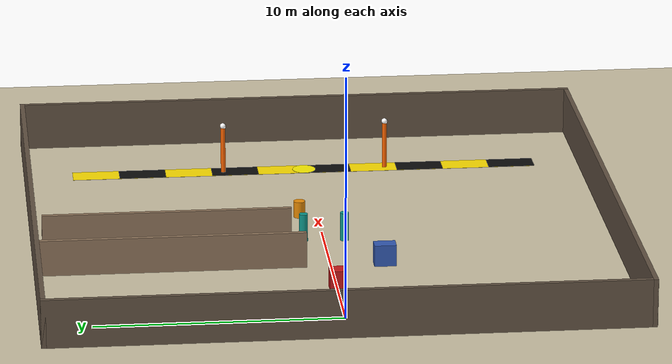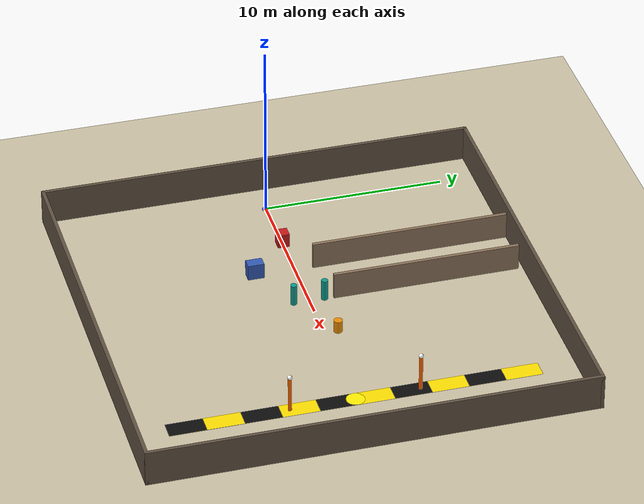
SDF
<?xml version="1.0" ?>
<sdf version="1.8">
  <world name="warehouse">

    <physics name="1ms" type="ignored">
      <max_step_size>0.001</max_step_size>
      <real_time_factor>1.0</real_time_factor>
    </physics>

    <plugin filename="gz-sim-physics-system"           name="gz::sim::systems::Physics"/>
    <plugin filename="gz-sim-user-commands-system"     name="gz::sim::systems::UserCommands"/>
    <plugin filename="gz-sim-scene-broadcaster-system" name="gz::sim::systems::SceneBroadcaster"/>
    <plugin filename="gz-sim-sensors-system"           name="gz::sim::systems::Sensors">
      <render_engine>ogre2</render_engine>
    </plugin>
    <plugin filename="gz-sim-imu-system" name="gz::sim::systems::Imu"/>

    <!-- Lighting -->
    <light type="directional" name="sun">
      <cast_shadows>true</cast_shadows>
      <pose>0 0 10 0 0 0</pose>
      <diffuse>0.85 0.85 0.85 1</diffuse>
      <specular>0.2 0.2 0.2 1</specular>
      <direction>-0.5 0.1 -0.9</direction>
    </light>
    <light type="point" name="finish_fill">
      <pose>18 0 5 0 0 0</pose>
      <diffuse>1.0 0.95 0.5 1</diffuse>
      <specular>0.2 0.2 0.1 1</specular>
      <attenuation><range>12</range><linear>0.05</linear><quadratic>0.01</quadratic></attenuation>
    </light>

    <!-- Floor -->
    <model name="ground_plane"><static>true</static>
      <link name="link">
        <collision name="c"><geometry><plane><normal>0 0 1</normal><size>50 50</size></plane></geometry></collision>
        <visual name="v"><geometry><plane><normal>0 0 1</normal><size>50 50</size></plane></geometry>
          <material><ambient>0.80 0.76 0.65 1</ambient><diffuse>0.80 0.76 0.65 1</diffuse></material>
        </visual>
      </link>
    </model>

    <!-- Arena walls -->
    <model name="wall_north"><static>true</static><pose>10 12 1.0 0 0 0</pose>
      <link name="link">
        <collision name="c"><geometry><box><size>24.2 0.2 2.0</size></box></geometry></collision>
        <visual name="v"><geometry><box><size>24.2 0.2 2.0</size></box></geometry>
          <material><ambient>0.38 0.32 0.26 1</ambient><diffuse>0.38 0.32 0.26 1</diffuse></material>
        </visual>
      </link>
    </model>
    <model name="wall_south"><static>true</static><pose>10 -12 1.0 0 0 0</pose>
      <link name="link">
        <collision name="c"><geometry><box><size>24.2 0.2 2.0</size></box></geometry></collision>
        <visual name="v"><geometry><box><size>24.2 0.2 2.0</size></box></geometry>
          <material><ambient>0.38 0.32 0.26 1</ambient><diffuse>0.38 0.32 0.26 1</diffuse></material>
        </visual>
      </link>
    </model>
    <model name="wall_west"><static>true</static><pose>-2 0 1.0 0 0 0</pose>
      <link name="link">
        <collision name="c"><geometry><box><size>0.2 24.2 2.0</size></box></geometry></collision>
        <visual name="v"><geometry><box><size>0.2 24.2 2.0</size></box></geometry>
          <material><ambient>0.38 0.32 0.26 1</ambient><diffuse>0.38 0.32 0.26 1</diffuse></material>
        </visual>
      </link>
    </model>
    <model name="wall_east"><static>true</static><pose>22 0 1.0 0 0 0</pose>
      <link name="link">
        <collision name="c"><geometry><box><size>0.2 24.2 2.0</size></box></geometry></collision>
        <visual name="v"><geometry><box><size>0.2 24.2 2.0</size></box></geometry>
          <material><ambient>0.38 0.32 0.26 1</ambient><diffuse>0.38 0.32 0.26 1</diffuse></material>
        </visual>
      </link>
    </model>

    <!-- Spawn marker -->
    <model name="spawn_marker"><static>true</static><pose>0 0 0.003 0 0 0</pose>
      <link name="link"><visual name="v">
        <geometry><cylinder><radius>0.22</radius><length>0.006</length></cylinder></geometry>
        <material><ambient>0.2 0.2 0.9 0.8</ambient><diffuse>0.2 0.2 0.9 0.8</diffuse></material>
      </visual></link>
    </model>

    <!-- ═══ FINISH LINE (unchanged) ═══ -->
    <model name="fl_checker_base"><static>true</static><pose>18.0 0 0.003 0 0 0</pose>
      <link name="link"><visual name="v">
        <geometry><box><size>1.0 20.0 0.006</size></box></geometry>
        <material><ambient>1.0 0.88 0.0 1</ambient><diffuse>1.0 0.88 0.0 1</diffuse></material>
      </visual></link>
    </model>
    <model name="fl_chk_a"><static>true</static><pose>18.0 -9.0 0.007 0 0 0</pose>
      <link name="link"><visual name="v"><geometry><box><size>1.0 2.0 0.004</size></box></geometry>
        <material><ambient>0.05 0.05 0.05 1</ambient><diffuse>0.05 0.05 0.05 1</diffuse></material></visual></link>
    </model>
    <model name="fl_chk_b"><static>true</static><pose>18.0 -5.0 0.007 0 0 0</pose>
      <link name="link"><visual name="v"><geometry><box><size>1.0 2.0 0.004</size></box></geometry>
        <material><ambient>0.05 0.05 0.05 1</ambient><diffuse>0.05 0.05 0.05 1</diffuse></material></visual></link>
    </model>
    <model name="fl_chk_c"><static>true</static><pose>18.0 -1.0 0.007 0 0 0</pose>
      <link name="link"><visual name="v"><geometry><box><size>1.0 2.0 0.004</size></box></geometry>
        <material><ambient>0.05 0.05 0.05 1</ambient><diffuse>0.05 0.05 0.05 1</diffuse></material></visual></link>
    </model>
    <model name="fl_chk_d"><static>true</static><pose>18.0 3.0 0.007 0 0 0</pose>
      <link name="link"><visual name="v"><geometry><box><size>1.0 2.0 0.004</size></box></geometry>
        <material><ambient>0.05 0.05 0.05 1</ambient><diffuse>0.05 0.05 0.05 1</diffuse></material></visual></link>
    </model>
    <model name="fl_chk_e"><static>true</static><pose>18.0 7.0 0.007 0 0 0</pose>
      <link name="link"><visual name="v"><geometry><box><size>1.0 2.0 0.004</size></box></geometry>
        <material><ambient>0.05 0.05 0.05 1</ambient><diffuse>0.05 0.05 0.05 1</diffuse></material></visual></link>
    </model>
    <model name="fl_post_n"><static>true</static><pose>18.0 3.5 1.0 0 0 0</pose>
      <link name="link">
        <collision name="c"><geometry><cylinder><radius>0.10</radius><length>2.0</length></cylinder></geometry></collision>
        <visual name="v"><geometry><cylinder><radius>0.10</radius><length>2.0</length></cylinder></geometry>
          <material><ambient>1.0 0.40 0.0 1</ambient><diffuse>1.0 0.40 0.0 1</diffuse></material>
        </visual>
      </link>
    </model>
    <model name="fl_post_n_cap"><static>true</static><pose>18.0 3.5 2.08 0 0 0</pose>
      <link name="link"><visual name="v"><geometry><sphere><radius>0.13</radius></sphere></geometry>
        <material><ambient>1 1 1 1</ambient><diffuse>1 1 1 1</diffuse></material></visual></link>
    </model>
    <model name="fl_post_s"><static>true</static><pose>18.0 -3.5 1.0 0 0 0</pose>
      <link name="link">
        <collision name="c"><geometry><cylinder><radius>0.10</radius><length>2.0</length></cylinder></geometry></collision>
        <visual name="v"><geometry><cylinder><radius>0.10</radius><length>2.0</length></cylinder></geometry>
          <material><ambient>1.0 0.40 0.0 1</ambient><diffuse>1.0 0.40 0.0 1</diffuse></material>
        </visual>
      </link>
    </model>
    <model name="fl_post_s_cap"><static>true</static><pose>18.0 -3.5 2.08 0 0 0</pose>
      <link name="link"><visual name="v"><geometry><sphere><radius>0.13</radius></sphere></geometry>
        <material><ambient>1 1 1 1</ambient><diffuse>1 1 1 1</diffuse></material></visual></link>
    </model>
    <model name="fl_goal_dot"><static>true</static><pose>18.0 0 0.011 0 0 0</pose>
      <link name="link"><visual name="v">
        <geometry><cylinder><radius>0.50</radius><length>0.008</length></cylinder></geometry>
        <material>
          <ambient>1.0 0.95 0.0 1</ambient><diffuse>1.0 0.95 0.0 1</diffuse>
          <emissive>0.5 0.48 0.0 1</emissive>
        </material>
      </visual></link>
    </model>

    <!-- ═══ ZONE 1 — x=3.5 — Red crate on centreline ═══ -->
    <model name="Z1_crate"><static>true</static><pose>3.5 0.0 0.400 0 0 0</pose>
      <link name="link">
        <collision name="c"><geometry><box><size>0.65 0.65 0.80</size></box></geometry></collision>
        <visual name="v"><geometry><box><size>0.65 0.65 0.80</size></box></geometry>
          <material><ambient>0.78 0.10 0.10 1</ambient><diffuse>0.78 0.10 0.10 1</diffuse></material>
        </visual>
      </link>
    </model>

    <!-- ═══ ZONE 2 — x=6.0 — Chicane (wall N + box S) ═══ -->
    <model name="Z2_wall_n"><static>true</static><pose>6.0 6.5 0.75 0 0 0</pose>
      <link name="link">
        <collision name="c"><geometry><box><size>0.20 11.0 1.50</size></box></geometry></collision>
        <visual name="v"><geometry><box><size>0.20 11.0 1.50</size></box></geometry>
          <material><ambient>0.55 0.45 0.35 1</ambient><diffuse>0.55 0.45 0.35 1</diffuse></material>
        </visual>
      </link>
    </model>
    <model name="Z2_box"><static>true</static><pose>6.0 -2.2 0.450 0 0 0</pose>
      <link name="link">
        <collision name="c"><geometry><box><size>0.60 0.90 0.90</size></box></geometry></collision>
        <visual name="v"><geometry><box><size>0.60 0.90 0.90</size></box></geometry>
          <material><ambient>0.20 0.35 0.70 1</ambient><diffuse>0.20 0.35 0.70 1</diffuse></material>
        </visual>
      </link>
    </model>

    <!-- ═══ ZONE 3 — x=9.0 — Symmetric gate ═══ -->
    <model name="Z3_pillar_n"><static>true</static><pose>9.0 0.85 0.600 0 0 0</pose>
      <link name="link">
        <collision name="c"><geometry><cylinder><radius>0.18</radius><length>1.20</length></cylinder></geometry></collision>
        <visual name="v"><geometry><cylinder><radius>0.18</radius><length>1.20</length></cylinder></geometry>
          <material><ambient>0.05 0.60 0.55 1</ambient><diffuse>0.05 0.60 0.55 1</diffuse></material>
        </visual>
      </link>
    </model>
    <model name="Z3_pillar_s"><static>true</static><pose>9.0 -0.85 0.600 0 0 0</pose>
      <link name="link">
        <collision name="c"><geometry><cylinder><radius>0.18</radius><length>1.20</length></cylinder></geometry></collision>
        <visual name="v"><geometry><cylinder><radius>0.18</radius><length>1.20</length></cylinder></geometry>
          <material><ambient>0.05 0.60 0.55 1</ambient><diffuse>0.05 0.60 0.55 1</diffuse></material>
        </visual>
      </link>
    </model>
    <model name="Z3_wall_n"><static>true</static><pose>9.0 6.5 0.75 0 0 0</pose>
      <link name="link">
        <collision name="c"><geometry><box><size>0.20 10.3 1.50</size></box></geometry></collision>
        <visual name="v"><geometry><box><size>0.20 10.3 1.50</size></box></geometry>
          <material><ambient>0.55 0.45 0.35 1</ambient><diffuse>0.55 0.45 0.35 1</diffuse></material>
        </visual>
      </link>
    </model>

    <!-- ═══ ZONE 4 — x=12/13 — Orange barrel slalom ═══ -->
    <model name="Z4_barrel_a"><static>true</static><pose>12.0 0.75 0.350 0 0 0</pose>
      <link name="link">
        <collision name="c"><geometry><cylinder><radius>0.24</radius><length>0.70</length></cylinder></geometry></collision>
        <visual name="v"><geometry><cylinder><radius>0.24</radius><length>0.70</length></cylinder></geometry>
          <material><ambient>0.92 0.55 0.02 1</ambient><diffuse>0.92 0.55 0.02 1</diffuse></material>
        </visual>
      </link>
    </model>

  </world>
</sdf>
